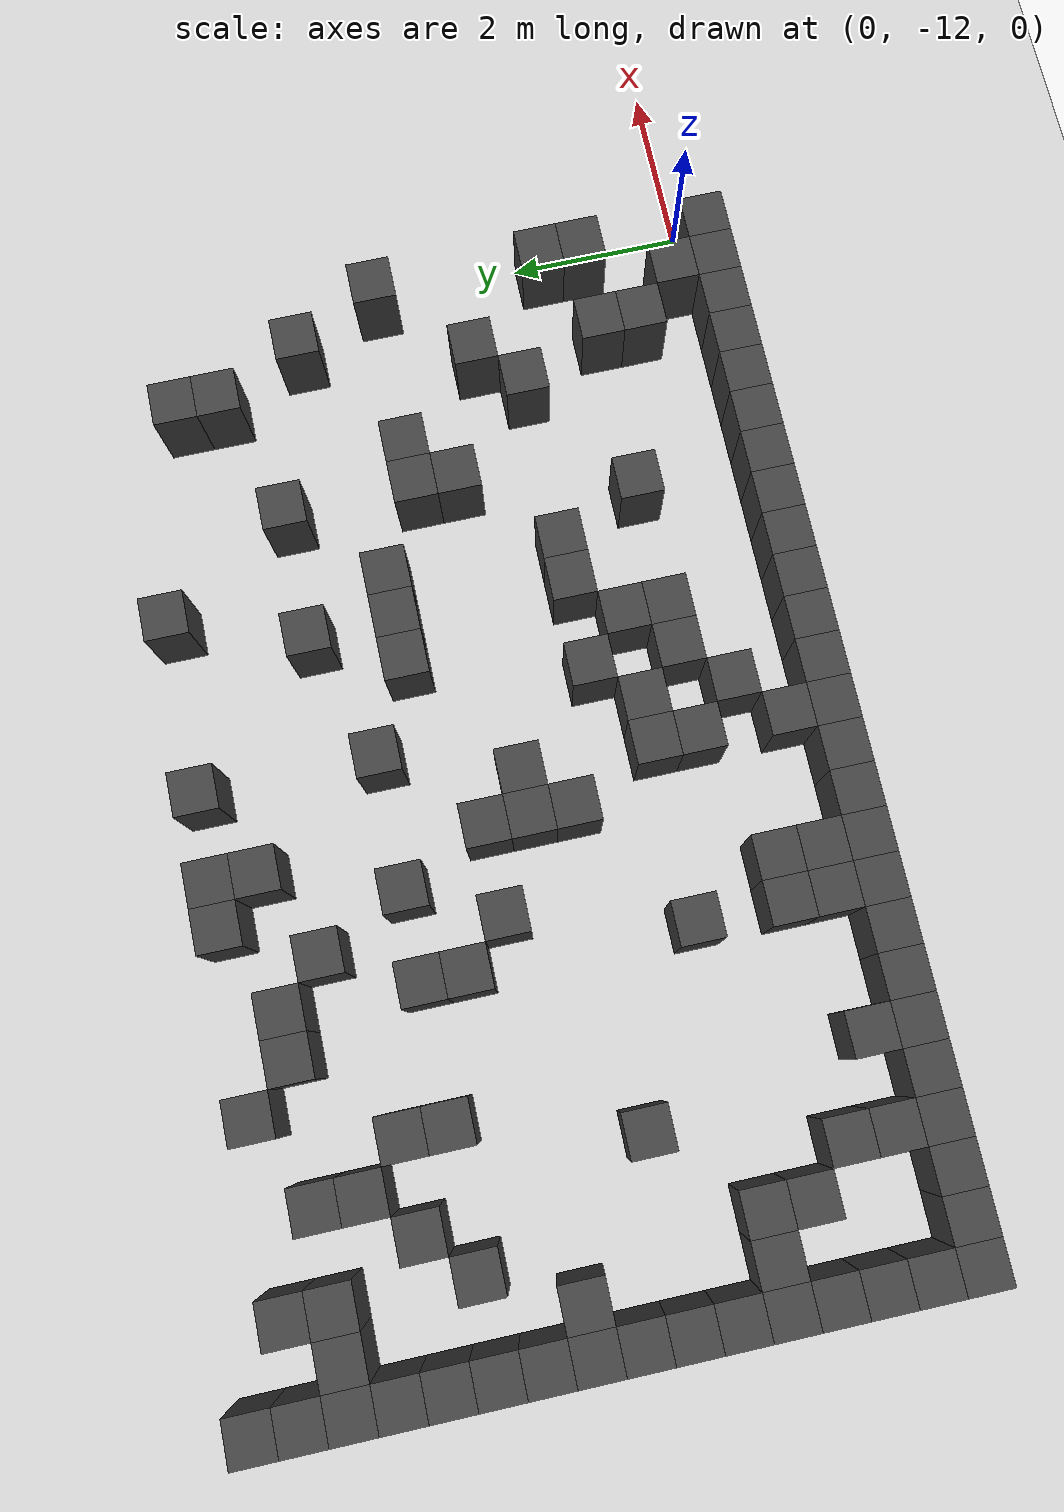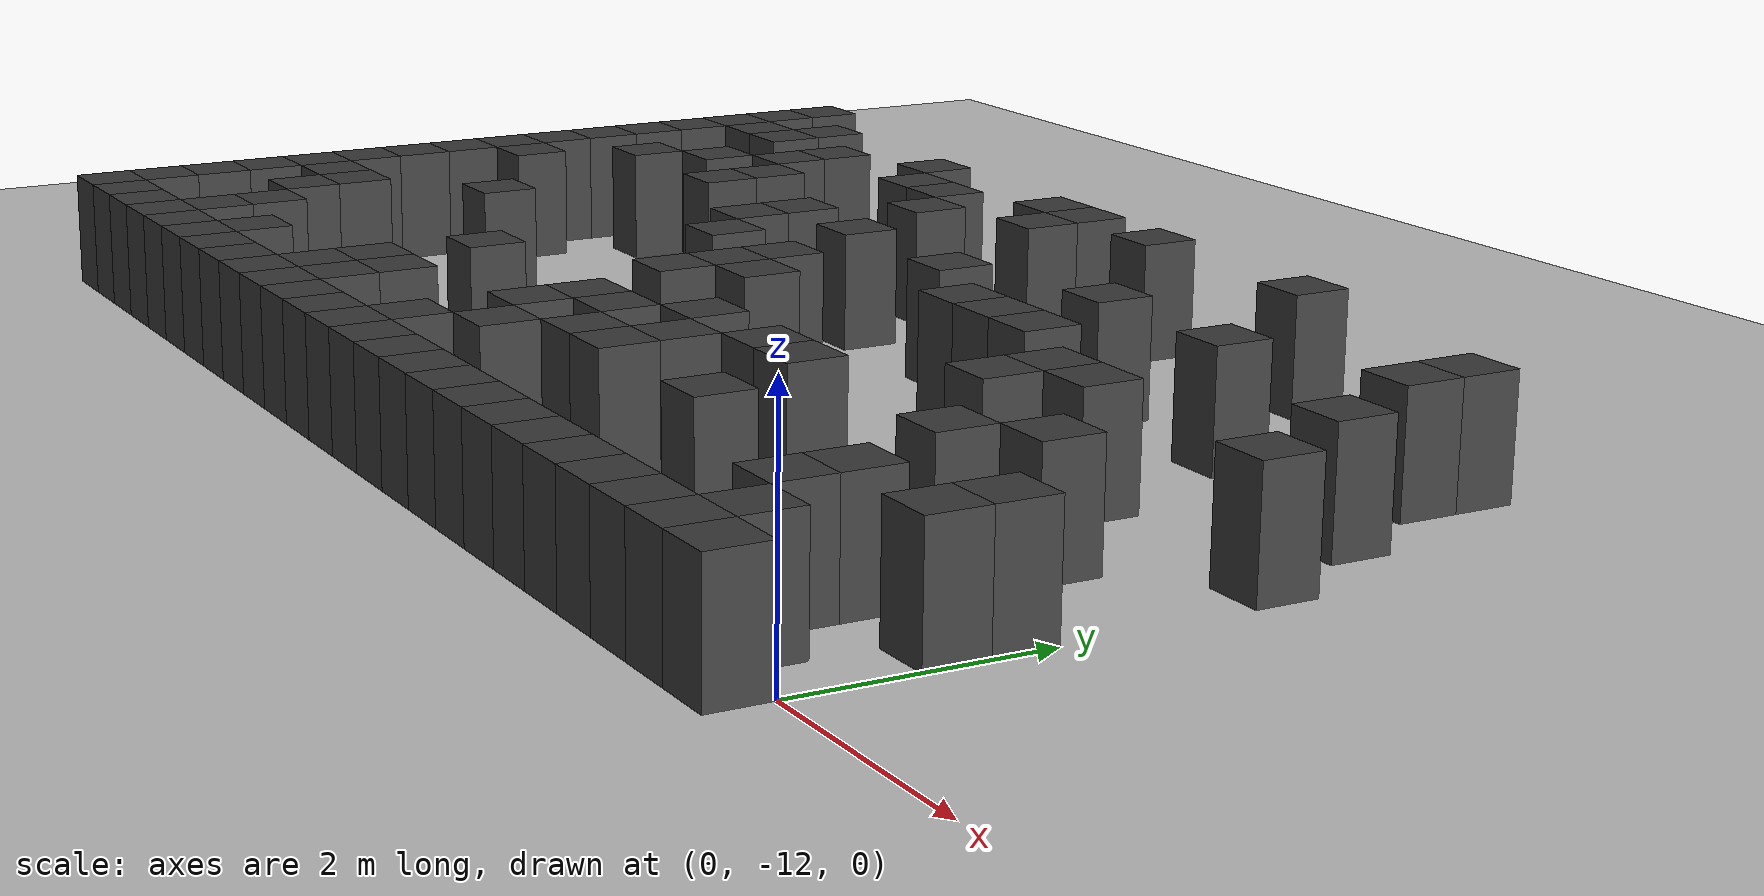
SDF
<sdf version="1.7">
 <world name="map_4226">
  <model name="ground_plane">
   <static>true</static>
   <link name="link">
    <collision name="collision">
     <geometry><plane><normal>0 0 1</normal><size>200 200</size></plane></geometry>
    </collision>
    <visual name="visual">
     <geometry><plane><normal>0 0 1</normal><size>200 200</size></plane></geometry>
     <material><ambient>0.8 0.8 0.8 1</ambient><diffuse>0.8 0.8 0.8 1</diffuse></material>
    </visual>
   </link>
  </model>
  <model name="maze_environment">
   <static>true</static>
   <link name="wall_438">
    <pose>-12.250 -4.750 0.500 0 0 0</pose>
    <collision name="col"><geometry><box><size>0.5 0.5 1.0</size></box></geometry></collision>
    <visual name="vis">
     <geometry><box><size>0.5 0.5 1.0</size></box></geometry>
     <material><ambient>0.15 0.15 0.15 1</ambient><diffuse>0.25 0.25 0.25 1</diffuse></material>
    </visual>
   </link>
   <link name="wall_446">
    <pose>-12.250 -5.250 0.500 0 0 0</pose>
    <collision name="col"><geometry><box><size>0.5 0.5 1.0</size></box></geometry></collision>
    <visual name="vis">
     <geometry><box><size>0.5 0.5 1.0</size></box></geometry>
     <material><ambient>0.15 0.15 0.15 1</ambient><diffuse>0.25 0.25 0.25 1</diffuse></material>
    </visual>
   </link>
   <link name="wall_447">
    <pose>-11.250 -5.250 0.500 0 0 0</pose>
    <collision name="col"><geometry><box><size>0.5 0.5 1.0</size></box></geometry></collision>
    <visual name="vis">
     <geometry><box><size>0.5 0.5 1.0</size></box></geometry>
     <material><ambient>0.15 0.15 0.15 1</ambient><diffuse>0.25 0.25 0.25 1</diffuse></material>
    </visual>
   </link>
   <link name="wall_448">
    <pose>-9.250 -5.250 0.500 0 0 0</pose>
    <collision name="col"><geometry><box><size>0.5 0.5 1.0</size></box></geometry></collision>
    <visual name="vis">
     <geometry><box><size>0.5 0.5 1.0</size></box></geometry>
     <material><ambient>0.15 0.15 0.15 1</ambient><diffuse>0.25 0.25 0.25 1</diffuse></material>
    </visual>
   </link>
   <link name="wall_449">
    <pose>-7.250 -5.250 0.500 0 0 0</pose>
    <collision name="col"><geometry><box><size>0.5 0.5 1.0</size></box></geometry></collision>
    <visual name="vis">
     <geometry><box><size>0.5 0.5 1.0</size></box></geometry>
     <material><ambient>0.15 0.15 0.15 1</ambient><diffuse>0.25 0.25 0.25 1</diffuse></material>
    </visual>
   </link>
   <link name="wall_450">
    <pose>-6.750 -5.250 0.500 0 0 0</pose>
    <collision name="col"><geometry><box><size>0.5 0.5 1.0</size></box></geometry></collision>
    <visual name="vis">
     <geometry><box><size>0.5 0.5 1.0</size></box></geometry>
     <material><ambient>0.15 0.15 0.15 1</ambient><diffuse>0.25 0.25 0.25 1</diffuse></material>
    </visual>
   </link>
   <link name="wall_451">
    <pose>-5.750 -5.250 0.500 0 0 0</pose>
    <collision name="col"><geometry><box><size>0.5 0.5 1.0</size></box></geometry></collision>
    <visual name="vis">
     <geometry><box><size>0.5 0.5 1.0</size></box></geometry>
     <material><ambient>0.15 0.15 0.15 1</ambient><diffuse>0.25 0.25 0.25 1</diffuse></material>
    </visual>
   </link>
   <link name="wall_452">
    <pose>-3.750 -5.250 0.500 0 0 0</pose>
    <collision name="col"><geometry><box><size>0.5 0.5 1.0</size></box></geometry></collision>
    <visual name="vis">
     <geometry><box><size>0.5 0.5 1.0</size></box></geometry>
     <material><ambient>0.15 0.15 0.15 1</ambient><diffuse>0.25 0.25 0.25 1</diffuse></material>
    </visual>
   </link>
   <link name="wall_458">
    <pose>-12.250 -5.750 0.500 0 0 0</pose>
    <collision name="col"><geometry><box><size>0.5 0.5 1.0</size></box></geometry></collision>
    <visual name="vis">
     <geometry><box><size>0.5 0.5 1.0</size></box></geometry>
     <material><ambient>0.15 0.15 0.15 1</ambient><diffuse>0.25 0.25 0.25 1</diffuse></material>
    </visual>
   </link>
   <link name="wall_459">
    <pose>-11.750 -5.750 0.500 0 0 0</pose>
    <collision name="col"><geometry><box><size>0.5 0.5 1.0</size></box></geometry></collision>
    <visual name="vis">
     <geometry><box><size>0.5 0.5 1.0</size></box></geometry>
     <material><ambient>0.15 0.15 0.15 1</ambient><diffuse>0.25 0.25 0.25 1</diffuse></material>
    </visual>
   </link>
   <link name="wall_460">
    <pose>-11.250 -5.750 0.500 0 0 0</pose>
    <collision name="col"><geometry><box><size>0.5 0.5 1.0</size></box></geometry></collision>
    <visual name="vis">
     <geometry><box><size>0.5 0.5 1.0</size></box></geometry>
     <material><ambient>0.15 0.15 0.15 1</ambient><diffuse>0.25 0.25 0.25 1</diffuse></material>
    </visual>
   </link>
   <link name="wall_461">
    <pose>-10.250 -5.750 0.500 0 0 0</pose>
    <collision name="col"><geometry><box><size>0.5 0.5 1.0</size></box></geometry></collision>
    <visual name="vis">
     <geometry><box><size>0.5 0.5 1.0</size></box></geometry>
     <material><ambient>0.15 0.15 0.15 1</ambient><diffuse>0.25 0.25 0.25 1</diffuse></material>
    </visual>
   </link>
   <link name="wall_462">
    <pose>-8.750 -5.750 0.500 0 0 0</pose>
    <collision name="col"><geometry><box><size>0.5 0.5 1.0</size></box></geometry></collision>
    <visual name="vis">
     <geometry><box><size>0.5 0.5 1.0</size></box></geometry>
     <material><ambient>0.15 0.15 0.15 1</ambient><diffuse>0.25 0.25 0.25 1</diffuse></material>
    </visual>
   </link>
   <link name="wall_463">
    <pose>-8.250 -5.750 0.500 0 0 0</pose>
    <collision name="col"><geometry><box><size>0.5 0.5 1.0</size></box></geometry></collision>
    <visual name="vis">
     <geometry><box><size>0.5 0.5 1.0</size></box></geometry>
     <material><ambient>0.15 0.15 0.15 1</ambient><diffuse>0.25 0.25 0.25 1</diffuse></material>
    </visual>
   </link>
   <link name="wall_464">
    <pose>-6.750 -5.750 0.500 0 0 0</pose>
    <collision name="col"><geometry><box><size>0.5 0.5 1.0</size></box></geometry></collision>
    <visual name="vis">
     <geometry><box><size>0.5 0.5 1.0</size></box></geometry>
     <material><ambient>0.15 0.15 0.15 1</ambient><diffuse>0.25 0.25 0.25 1</diffuse></material>
    </visual>
   </link>
   <link name="wall_465">
    <pose>-1.250 -5.750 0.500 0 0 0</pose>
    <collision name="col"><geometry><box><size>0.5 0.5 1.0</size></box></geometry></collision>
    <visual name="vis">
     <geometry><box><size>0.5 0.5 1.0</size></box></geometry>
     <material><ambient>0.15 0.15 0.15 1</ambient><diffuse>0.25 0.25 0.25 1</diffuse></material>
    </visual>
   </link>
   <link name="wall_474">
    <pose>-12.250 -6.250 0.500 0 0 0</pose>
    <collision name="col"><geometry><box><size>0.5 0.5 1.0</size></box></geometry></collision>
    <visual name="vis">
     <geometry><box><size>0.5 0.5 1.0</size></box></geometry>
     <material><ambient>0.15 0.15 0.15 1</ambient><diffuse>0.25 0.25 0.25 1</diffuse></material>
    </visual>
   </link>
   <link name="wall_475">
    <pose>-10.250 -6.250 0.500 0 0 0</pose>
    <collision name="col"><geometry><box><size>0.5 0.5 1.0</size></box></geometry></collision>
    <visual name="vis">
     <geometry><box><size>0.5 0.5 1.0</size></box></geometry>
     <material><ambient>0.15 0.15 0.15 1</ambient><diffuse>0.25 0.25 0.25 1</diffuse></material>
    </visual>
   </link>
   <link name="wall_476">
    <pose>-7.750 -6.250 0.500 0 0 0</pose>
    <collision name="col"><geometry><box><size>0.5 0.5 1.0</size></box></geometry></collision>
    <visual name="vis">
     <geometry><box><size>0.5 0.5 1.0</size></box></geometry>
     <material><ambient>0.15 0.15 0.15 1</ambient><diffuse>0.25 0.25 0.25 1</diffuse></material>
    </visual>
   </link>
   <link name="wall_477">
    <pose>-1.250 -6.250 0.500 0 0 0</pose>
    <collision name="col"><geometry><box><size>0.5 0.5 1.0</size></box></geometry></collision>
    <visual name="vis">
     <geometry><box><size>0.5 0.5 1.0</size></box></geometry>
     <material><ambient>0.15 0.15 0.15 1</ambient><diffuse>0.25 0.25 0.25 1</diffuse></material>
    </visual>
   </link>
   <link name="wall_486">
    <pose>-12.250 -6.750 0.500 0 0 0</pose>
    <collision name="col"><geometry><box><size>0.5 0.5 1.0</size></box></geometry></collision>
    <visual name="vis">
     <geometry><box><size>0.5 0.5 1.0</size></box></geometry>
     <material><ambient>0.15 0.15 0.15 1</ambient><diffuse>0.25 0.25 0.25 1</diffuse></material>
    </visual>
   </link>
   <link name="wall_487">
    <pose>-10.750 -6.750 0.500 0 0 0</pose>
    <collision name="col"><geometry><box><size>0.5 0.5 1.0</size></box></geometry></collision>
    <visual name="vis">
     <geometry><box><size>0.5 0.5 1.0</size></box></geometry>
     <material><ambient>0.15 0.15 0.15 1</ambient><diffuse>0.25 0.25 0.25 1</diffuse></material>
    </visual>
   </link>
   <link name="wall_488">
    <pose>-9.750 -6.750 0.500 0 0 0</pose>
    <collision name="col"><geometry><box><size>0.5 0.5 1.0</size></box></geometry></collision>
    <visual name="vis">
     <geometry><box><size>0.5 0.5 1.0</size></box></geometry>
     <material><ambient>0.15 0.15 0.15 1</ambient><diffuse>0.25 0.25 0.25 1</diffuse></material>
    </visual>
   </link>
   <link name="wall_489">
    <pose>-4.250 -6.750 0.500 0 0 0</pose>
    <collision name="col"><geometry><box><size>0.5 0.5 1.0</size></box></geometry></collision>
    <visual name="vis">
     <geometry><box><size>0.5 0.5 1.0</size></box></geometry>
     <material><ambient>0.15 0.15 0.15 1</ambient><diffuse>0.25 0.25 0.25 1</diffuse></material>
    </visual>
   </link>
   <link name="wall_490">
    <pose>-2.750 -6.750 0.500 0 0 0</pose>
    <collision name="col"><geometry><box><size>0.5 0.5 1.0</size></box></geometry></collision>
    <visual name="vis">
     <geometry><box><size>0.5 0.5 1.0</size></box></geometry>
     <material><ambient>0.15 0.15 0.15 1</ambient><diffuse>0.25 0.25 0.25 1</diffuse></material>
    </visual>
   </link>
   <link name="wall_500">
    <pose>-12.250 -7.250 0.500 0 0 0</pose>
    <collision name="col"><geometry><box><size>0.5 0.5 1.0</size></box></geometry></collision>
    <visual name="vis">
     <geometry><box><size>0.5 0.5 1.0</size></box></geometry>
     <material><ambient>0.15 0.15 0.15 1</ambient><diffuse>0.25 0.25 0.25 1</diffuse></material>
    </visual>
   </link>
   <link name="wall_501">
    <pose>-11.250 -7.250 0.500 0 0 0</pose>
    <collision name="col"><geometry><box><size>0.5 0.5 1.0</size></box></geometry></collision>
    <visual name="vis">
     <geometry><box><size>0.5 0.5 1.0</size></box></geometry>
     <material><ambient>0.15 0.15 0.15 1</ambient><diffuse>0.25 0.25 0.25 1</diffuse></material>
    </visual>
   </link>
   <link name="wall_502">
    <pose>-9.750 -7.250 0.500 0 0 0</pose>
    <collision name="col"><geometry><box><size>0.5 0.5 1.0</size></box></geometry></collision>
    <visual name="vis">
     <geometry><box><size>0.5 0.5 1.0</size></box></geometry>
     <material><ambient>0.15 0.15 0.15 1</ambient><diffuse>0.25 0.25 0.25 1</diffuse></material>
    </visual>
   </link>
   <link name="wall_503">
    <pose>-8.250 -7.250 0.500 0 0 0</pose>
    <collision name="col"><geometry><box><size>0.5 0.5 1.0</size></box></geometry></collision>
    <visual name="vis">
     <geometry><box><size>0.5 0.5 1.0</size></box></geometry>
     <material><ambient>0.15 0.15 0.15 1</ambient><diffuse>0.25 0.25 0.25 1</diffuse></material>
    </visual>
   </link>
   <link name="wall_504">
    <pose>-7.250 -7.250 0.500 0 0 0</pose>
    <collision name="col"><geometry><box><size>0.5 0.5 1.0</size></box></geometry></collision>
    <visual name="vis">
     <geometry><box><size>0.5 0.5 1.0</size></box></geometry>
     <material><ambient>0.15 0.15 0.15 1</ambient><diffuse>0.25 0.25 0.25 1</diffuse></material>
    </visual>
   </link>
   <link name="wall_505">
    <pose>-5.750 -7.250 0.500 0 0 0</pose>
    <collision name="col"><geometry><box><size>0.5 0.5 1.0</size></box></geometry></collision>
    <visual name="vis">
     <geometry><box><size>0.5 0.5 1.0</size></box></geometry>
     <material><ambient>0.15 0.15 0.15 1</ambient><diffuse>0.25 0.25 0.25 1</diffuse></material>
    </visual>
   </link>
   <link name="wall_506">
    <pose>-0.750 -7.250 0.500 0 0 0</pose>
    <collision name="col"><geometry><box><size>0.5 0.5 1.0</size></box></geometry></collision>
    <visual name="vis">
     <geometry><box><size>0.5 0.5 1.0</size></box></geometry>
     <material><ambient>0.15 0.15 0.15 1</ambient><diffuse>0.25 0.25 0.25 1</diffuse></material>
    </visual>
   </link>
   <link name="wall_514">
    <pose>-12.250 -7.750 0.500 0 0 0</pose>
    <collision name="col"><geometry><box><size>0.5 0.5 1.0</size></box></geometry></collision>
    <visual name="vis">
     <geometry><box><size>0.5 0.5 1.0</size></box></geometry>
     <material><ambient>0.15 0.15 0.15 1</ambient><diffuse>0.25 0.25 0.25 1</diffuse></material>
    </visual>
   </link>
   <link name="wall_515">
    <pose>-8.250 -7.750 0.500 0 0 0</pose>
    <collision name="col"><geometry><box><size>0.5 0.5 1.0</size></box></geometry></collision>
    <visual name="vis">
     <geometry><box><size>0.5 0.5 1.0</size></box></geometry>
     <material><ambient>0.15 0.15 0.15 1</ambient><diffuse>0.25 0.25 0.25 1</diffuse></material>
    </visual>
   </link>
   <link name="wall_516">
    <pose>-4.750 -7.750 0.500 0 0 0</pose>
    <collision name="col"><geometry><box><size>0.5 0.5 1.0</size></box></geometry></collision>
    <visual name="vis">
     <geometry><box><size>0.5 0.5 1.0</size></box></geometry>
     <material><ambient>0.15 0.15 0.15 1</ambient><diffuse>0.25 0.25 0.25 1</diffuse></material>
    </visual>
   </link>
   <link name="wall_517">
    <pose>-4.250 -7.750 0.500 0 0 0</pose>
    <collision name="col"><geometry><box><size>0.5 0.5 1.0</size></box></geometry></collision>
    <visual name="vis">
     <geometry><box><size>0.5 0.5 1.0</size></box></geometry>
     <material><ambient>0.15 0.15 0.15 1</ambient><diffuse>0.25 0.25 0.25 1</diffuse></material>
    </visual>
   </link>
   <link name="wall_518">
    <pose>-3.750 -7.750 0.500 0 0 0</pose>
    <collision name="col"><geometry><box><size>0.5 0.5 1.0</size></box></geometry></collision>
    <visual name="vis">
     <geometry><box><size>0.5 0.5 1.0</size></box></geometry>
     <material><ambient>0.15 0.15 0.15 1</ambient><diffuse>0.25 0.25 0.25 1</diffuse></material>
    </visual>
   </link>
   <link name="wall_525">
    <pose>-12.250 -8.250 0.500 0 0 0</pose>
    <collision name="col"><geometry><box><size>0.5 0.5 1.0</size></box></geometry></collision>
    <visual name="vis">
     <geometry><box><size>0.5 0.5 1.0</size></box></geometry>
     <material><ambient>0.15 0.15 0.15 1</ambient><diffuse>0.25 0.25 0.25 1</diffuse></material>
    </visual>
   </link>
   <link name="wall_526">
    <pose>-11.750 -8.250 0.500 0 0 0</pose>
    <collision name="col"><geometry><box><size>0.5 0.5 1.0</size></box></geometry></collision>
    <visual name="vis">
     <geometry><box><size>0.5 0.5 1.0</size></box></geometry>
     <material><ambient>0.15 0.15 0.15 1</ambient><diffuse>0.25 0.25 0.25 1</diffuse></material>
    </visual>
   </link>
   <link name="wall_527">
    <pose>-7.750 -8.250 0.500 0 0 0</pose>
    <collision name="col"><geometry><box><size>0.5 0.5 1.0</size></box></geometry></collision>
    <visual name="vis">
     <geometry><box><size>0.5 0.5 1.0</size></box></geometry>
     <material><ambient>0.15 0.15 0.15 1</ambient><diffuse>0.25 0.25 0.25 1</diffuse></material>
    </visual>
   </link>
   <link name="wall_528">
    <pose>-6.750 -8.250 0.500 0 0 0</pose>
    <collision name="col"><geometry><box><size>0.5 0.5 1.0</size></box></geometry></collision>
    <visual name="vis">
     <geometry><box><size>0.5 0.5 1.0</size></box></geometry>
     <material><ambient>0.15 0.15 0.15 1</ambient><diffuse>0.25 0.25 0.25 1</diffuse></material>
    </visual>
   </link>
   <link name="wall_529">
    <pose>-2.750 -8.250 0.500 0 0 0</pose>
    <collision name="col"><geometry><box><size>0.5 0.5 1.0</size></box></geometry></collision>
    <visual name="vis">
     <geometry><box><size>0.5 0.5 1.0</size></box></geometry>
     <material><ambient>0.15 0.15 0.15 1</ambient><diffuse>0.25 0.25 0.25 1</diffuse></material>
    </visual>
   </link>
   <link name="wall_530">
    <pose>-2.250 -8.250 0.500 0 0 0</pose>
    <collision name="col"><geometry><box><size>0.5 0.5 1.0</size></box></geometry></collision>
    <visual name="vis">
     <geometry><box><size>0.5 0.5 1.0</size></box></geometry>
     <material><ambient>0.15 0.15 0.15 1</ambient><diffuse>0.25 0.25 0.25 1</diffuse></material>
    </visual>
   </link>
   <link name="wall_531">
    <pose>-0.250 -8.250 0.500 0 0 0</pose>
    <collision name="col"><geometry><box><size>0.5 0.5 1.0</size></box></geometry></collision>
    <visual name="vis">
     <geometry><box><size>0.5 0.5 1.0</size></box></geometry>
     <material><ambient>0.15 0.15 0.15 1</ambient><diffuse>0.25 0.25 0.25 1</diffuse></material>
    </visual>
   </link>
   <link name="wall_538">
    <pose>-12.250 -8.750 0.500 0 0 0</pose>
    <collision name="col"><geometry><box><size>0.5 0.5 1.0</size></box></geometry></collision>
    <visual name="vis">
     <geometry><box><size>0.5 0.5 1.0</size></box></geometry>
     <material><ambient>0.15 0.15 0.15 1</ambient><diffuse>0.25 0.25 0.25 1</diffuse></material>
    </visual>
   </link>
   <link name="wall_539">
    <pose>-6.750 -8.750 0.500 0 0 0</pose>
    <collision name="col"><geometry><box><size>0.5 0.5 1.0</size></box></geometry></collision>
    <visual name="vis">
     <geometry><box><size>0.5 0.5 1.0</size></box></geometry>
     <material><ambient>0.15 0.15 0.15 1</ambient><diffuse>0.25 0.25 0.25 1</diffuse></material>
    </visual>
   </link>
   <link name="wall_540">
    <pose>-6.250 -8.750 0.500 0 0 0</pose>
    <collision name="col"><geometry><box><size>0.5 0.5 1.0</size></box></geometry></collision>
    <visual name="vis">
     <geometry><box><size>0.5 0.5 1.0</size></box></geometry>
     <material><ambient>0.15 0.15 0.15 1</ambient><diffuse>0.25 0.25 0.25 1</diffuse></material>
    </visual>
   </link>
   <link name="wall_541">
    <pose>-2.750 -8.750 0.500 0 0 0</pose>
    <collision name="col"><geometry><box><size>0.5 0.5 1.0</size></box></geometry></collision>
    <visual name="vis">
     <geometry><box><size>0.5 0.5 1.0</size></box></geometry>
     <material><ambient>0.15 0.15 0.15 1</ambient><diffuse>0.25 0.25 0.25 1</diffuse></material>
    </visual>
   </link>
   <link name="wall_548">
    <pose>-12.250 -9.250 0.500 0 0 0</pose>
    <collision name="col"><geometry><box><size>0.5 0.5 1.0</size></box></geometry></collision>
    <visual name="vis">
     <geometry><box><size>0.5 0.5 1.0</size></box></geometry>
     <material><ambient>0.15 0.15 0.15 1</ambient><diffuse>0.25 0.25 0.25 1</diffuse></material>
    </visual>
   </link>
   <link name="wall_549">
    <pose>-10.250 -9.250 0.500 0 0 0</pose>
    <collision name="col"><geometry><box><size>0.5 0.5 1.0</size></box></geometry></collision>
    <visual name="vis">
     <geometry><box><size>0.5 0.5 1.0</size></box></geometry>
     <material><ambient>0.15 0.15 0.15 1</ambient><diffuse>0.25 0.25 0.25 1</diffuse></material>
    </visual>
   </link>
   <link name="wall_550">
    <pose>-6.750 -9.250 0.500 0 0 0</pose>
    <collision name="col"><geometry><box><size>0.5 0.5 1.0</size></box></geometry></collision>
    <visual name="vis">
     <geometry><box><size>0.5 0.5 1.0</size></box></geometry>
     <material><ambient>0.15 0.15 0.15 1</ambient><diffuse>0.25 0.25 0.25 1</diffuse></material>
    </visual>
   </link>
   <link name="wall_551">
    <pose>-1.250 -9.250 0.500 0 0 0</pose>
    <collision name="col"><geometry><box><size>0.5 0.5 1.0</size></box></geometry></collision>
    <visual name="vis">
     <geometry><box><size>0.5 0.5 1.0</size></box></geometry>
     <material><ambient>0.15 0.15 0.15 1</ambient><diffuse>0.25 0.25 0.25 1</diffuse></material>
    </visual>
   </link>
   <link name="wall_557">
    <pose>-12.250 -9.750 0.500 0 0 0</pose>
    <collision name="col"><geometry><box><size>0.5 0.5 1.0</size></box></geometry></collision>
    <visual name="vis">
     <geometry><box><size>0.5 0.5 1.0</size></box></geometry>
     <material><ambient>0.15 0.15 0.15 1</ambient><diffuse>0.25 0.25 0.25 1</diffuse></material>
    </visual>
   </link>
   <link name="wall_558">
    <pose>-5.250 -9.750 0.500 0 0 0</pose>
    <collision name="col"><geometry><box><size>0.5 0.5 1.0</size></box></geometry></collision>
    <visual name="vis">
     <geometry><box><size>0.5 0.5 1.0</size></box></geometry>
     <material><ambient>0.15 0.15 0.15 1</ambient><diffuse>0.25 0.25 0.25 1</diffuse></material>
    </visual>
   </link>
   <link name="wall_559">
    <pose>-4.250 -9.750 0.500 0 0 0</pose>
    <collision name="col"><geometry><box><size>0.5 0.5 1.0</size></box></geometry></collision>
    <visual name="vis">
     <geometry><box><size>0.5 0.5 1.0</size></box></geometry>
     <material><ambient>0.15 0.15 0.15 1</ambient><diffuse>0.25 0.25 0.25 1</diffuse></material>
    </visual>
   </link>
   <link name="wall_560">
    <pose>-3.750 -9.750 0.500 0 0 0</pose>
    <collision name="col"><geometry><box><size>0.5 0.5 1.0</size></box></geometry></collision>
    <visual name="vis">
     <geometry><box><size>0.5 0.5 1.0</size></box></geometry>
     <material><ambient>0.15 0.15 0.15 1</ambient><diffuse>0.25 0.25 0.25 1</diffuse></material>
    </visual>
   </link>
   <link name="wall_561">
    <pose>-1.750 -9.750 0.500 0 0 0</pose>
    <collision name="col"><geometry><box><size>0.5 0.5 1.0</size></box></geometry></collision>
    <visual name="vis">
     <geometry><box><size>0.5 0.5 1.0</size></box></geometry>
     <material><ambient>0.15 0.15 0.15 1</ambient><diffuse>0.25 0.25 0.25 1</diffuse></material>
    </visual>
   </link>
   <link name="wall_567">
    <pose>-12.250 -10.250 0.500 0 0 0</pose>
    <collision name="col"><geometry><box><size>0.5 0.5 1.0</size></box></geometry></collision>
    <visual name="vis">
     <geometry><box><size>0.5 0.5 1.0</size></box></geometry>
     <material><ambient>0.15 0.15 0.15 1</ambient><diffuse>0.25 0.25 0.25 1</diffuse></material>
    </visual>
   </link>
   <link name="wall_568">
    <pose>-11.750 -10.250 0.500 0 0 0</pose>
    <collision name="col"><geometry><box><size>0.5 0.5 1.0</size></box></geometry></collision>
    <visual name="vis">
     <geometry><box><size>0.5 0.5 1.0</size></box></geometry>
     <material><ambient>0.15 0.15 0.15 1</ambient><diffuse>0.25 0.25 0.25 1</diffuse></material>
    </visual>
   </link>
   <link name="wall_569">
    <pose>-11.250 -10.250 0.500 0 0 0</pose>
    <collision name="col"><geometry><box><size>0.5 0.5 1.0</size></box></geometry></collision>
    <visual name="vis">
     <geometry><box><size>0.5 0.5 1.0</size></box></geometry>
     <material><ambient>0.15 0.15 0.15 1</ambient><diffuse>0.25 0.25 0.25 1</diffuse></material>
    </visual>
   </link>
   <link name="wall_570">
    <pose>-8.250 -10.250 0.500 0 0 0</pose>
    <collision name="col"><geometry><box><size>0.5 0.5 1.0</size></box></geometry></collision>
    <visual name="vis">
     <geometry><box><size>0.5 0.5 1.0</size></box></geometry>
     <material><ambient>0.15 0.15 0.15 1</ambient><diffuse>0.25 0.25 0.25 1</diffuse></material>
    </visual>
   </link>
   <link name="wall_571">
    <pose>-6.250 -10.250 0.500 0 0 0</pose>
    <collision name="col"><geometry><box><size>0.5 0.5 1.0</size></box></geometry></collision>
    <visual name="vis">
     <geometry><box><size>0.5 0.5 1.0</size></box></geometry>
     <material><ambient>0.15 0.15 0.15 1</ambient><diffuse>0.25 0.25 0.25 1</diffuse></material>
    </visual>
   </link>
   <link name="wall_572">
    <pose>-5.750 -10.250 0.500 0 0 0</pose>
    <collision name="col"><geometry><box><size>0.5 0.5 1.0</size></box></geometry></collision>
    <visual name="vis">
     <geometry><box><size>0.5 0.5 1.0</size></box></geometry>
     <material><ambient>0.15 0.15 0.15 1</ambient><diffuse>0.25 0.25 0.25 1</diffuse></material>
    </visual>
   </link>
   <link name="wall_573">
    <pose>-4.750 -10.250 0.500 0 0 0</pose>
    <collision name="col"><geometry><box><size>0.5 0.5 1.0</size></box></geometry></collision>
    <visual name="vis">
     <geometry><box><size>0.5 0.5 1.0</size></box></geometry>
     <material><ambient>0.15 0.15 0.15 1</ambient><diffuse>0.25 0.25 0.25 1</diffuse></material>
    </visual>
   </link>
   <link name="wall_574">
    <pose>-0.250 -10.250 0.500 0 0 0</pose>
    <collision name="col"><geometry><box><size>0.5 0.5 1.0</size></box></geometry></collision>
    <visual name="vis">
     <geometry><box><size>0.5 0.5 1.0</size></box></geometry>
     <material><ambient>0.15 0.15 0.15 1</ambient><diffuse>0.25 0.25 0.25 1</diffuse></material>
    </visual>
   </link>
   <link name="wall_580">
    <pose>-12.250 -10.750 0.500 0 0 0</pose>
    <collision name="col"><geometry><box><size>0.5 0.5 1.0</size></box></geometry></collision>
    <visual name="vis">
     <geometry><box><size>0.5 0.5 1.0</size></box></geometry>
     <material><ambient>0.15 0.15 0.15 1</ambient><diffuse>0.25 0.25 0.25 1</diffuse></material>
    </visual>
   </link>
   <link name="wall_581">
    <pose>-11.250 -10.750 0.500 0 0 0</pose>
    <collision name="col"><geometry><box><size>0.5 0.5 1.0</size></box></geometry></collision>
    <visual name="vis">
     <geometry><box><size>0.5 0.5 1.0</size></box></geometry>
     <material><ambient>0.15 0.15 0.15 1</ambient><diffuse>0.25 0.25 0.25 1</diffuse></material>
    </visual>
   </link>
   <link name="wall_582">
    <pose>-6.250 -10.750 0.500 0 0 0</pose>
    <collision name="col"><geometry><box><size>0.5 0.5 1.0</size></box></geometry></collision>
    <visual name="vis">
     <geometry><box><size>0.5 0.5 1.0</size></box></geometry>
     <material><ambient>0.15 0.15 0.15 1</ambient><diffuse>0.25 0.25 0.25 1</diffuse></material>
    </visual>
   </link>
   <link name="wall_583">
    <pose>-5.250 -10.750 0.500 0 0 0</pose>
    <collision name="col"><geometry><box><size>0.5 0.5 1.0</size></box></geometry></collision>
    <visual name="vis">
     <geometry><box><size>0.5 0.5 1.0</size></box></geometry>
     <material><ambient>0.15 0.15 0.15 1</ambient><diffuse>0.25 0.25 0.25 1</diffuse></material>
    </visual>
   </link>
   <link name="wall_584">
    <pose>-4.750 -10.750 0.500 0 0 0</pose>
    <collision name="col"><geometry><box><size>0.5 0.5 1.0</size></box></geometry></collision>
    <visual name="vis">
     <geometry><box><size>0.5 0.5 1.0</size></box></geometry>
     <material><ambient>0.15 0.15 0.15 1</ambient><diffuse>0.25 0.25 0.25 1</diffuse></material>
    </visual>
   </link>
   <link name="wall_585">
    <pose>-3.250 -10.750 0.500 0 0 0</pose>
    <collision name="col"><geometry><box><size>0.5 0.5 1.0</size></box></geometry></collision>
    <visual name="vis">
     <geometry><box><size>0.5 0.5 1.0</size></box></geometry>
     <material><ambient>0.15 0.15 0.15 1</ambient><diffuse>0.25 0.25 0.25 1</diffuse></material>
    </visual>
   </link>
   <link name="wall_586">
    <pose>-1.250 -10.750 0.500 0 0 0</pose>
    <collision name="col"><geometry><box><size>0.5 0.5 1.0</size></box></geometry></collision>
    <visual name="vis">
     <geometry><box><size>0.5 0.5 1.0</size></box></geometry>
     <material><ambient>0.15 0.15 0.15 1</ambient><diffuse>0.25 0.25 0.25 1</diffuse></material>
    </visual>
   </link>
   <link name="wall_587">
    <pose>-0.250 -10.750 0.500 0 0 0</pose>
    <collision name="col"><geometry><box><size>0.5 0.5 1.0</size></box></geometry></collision>
    <visual name="vis">
     <geometry><box><size>0.5 0.5 1.0</size></box></geometry>
     <material><ambient>0.15 0.15 0.15 1</ambient><diffuse>0.25 0.25 0.25 1</diffuse></material>
    </visual>
   </link>
   <link name="wall_592">
    <pose>-12.250 -11.250 0.500 0 0 0</pose>
    <collision name="col"><geometry><box><size>0.5 0.5 1.0</size></box></geometry></collision>
    <visual name="vis">
     <geometry><box><size>0.5 0.5 1.0</size></box></geometry>
     <material><ambient>0.15 0.15 0.15 1</ambient><diffuse>0.25 0.25 0.25 1</diffuse></material>
    </visual>
   </link>
   <link name="wall_593">
    <pose>-10.750 -11.250 0.500 0 0 0</pose>
    <collision name="col"><geometry><box><size>0.5 0.5 1.0</size></box></geometry></collision>
    <visual name="vis">
     <geometry><box><size>0.5 0.5 1.0</size></box></geometry>
     <material><ambient>0.15 0.15 0.15 1</ambient><diffuse>0.25 0.25 0.25 1</diffuse></material>
    </visual>
   </link>
   <link name="wall_594">
    <pose>-8.250 -11.250 0.500 0 0 0</pose>
    <collision name="col"><geometry><box><size>0.5 0.5 1.0</size></box></geometry></collision>
    <visual name="vis">
     <geometry><box><size>0.5 0.5 1.0</size></box></geometry>
     <material><ambient>0.15 0.15 0.15 1</ambient><diffuse>0.25 0.25 0.25 1</diffuse></material>
    </visual>
   </link>
   <link name="wall_595">
    <pose>-7.750 -11.250 0.500 0 0 0</pose>
    <collision name="col"><geometry><box><size>0.5 0.5 1.0</size></box></geometry></collision>
    <visual name="vis">
     <geometry><box><size>0.5 0.5 1.0</size></box></geometry>
     <material><ambient>0.15 0.15 0.15 1</ambient><diffuse>0.25 0.25 0.25 1</diffuse></material>
    </visual>
   </link>
   <link name="wall_596">
    <pose>-5.750 -11.250 0.500 0 0 0</pose>
    <collision name="col"><geometry><box><size>0.5 0.5 1.0</size></box></geometry></collision>
    <visual name="vis">
     <geometry><box><size>0.5 0.5 1.0</size></box></geometry>
     <material><ambient>0.15 0.15 0.15 1</ambient><diffuse>0.25 0.25 0.25 1</diffuse></material>
    </visual>
   </link>
   <link name="wall_597">
    <pose>-1.250 -11.250 0.500 0 0 0</pose>
    <collision name="col"><geometry><box><size>0.5 0.5 1.0</size></box></geometry></collision>
    <visual name="vis">
     <geometry><box><size>0.5 0.5 1.0</size></box></geometry>
     <material><ambient>0.15 0.15 0.15 1</ambient><diffuse>0.25 0.25 0.25 1</diffuse></material>
    </visual>
   </link>
   <link name="wall_605">
    <pose>-12.250 -11.750 0.500 0 0 0</pose>
    <collision name="col"><geometry><box><size>0.5 0.5 1.0</size></box></geometry></collision>
    <visual name="vis">
     <geometry><box><size>0.5 0.5 1.0</size></box></geometry>
     <material><ambient>0.15 0.15 0.15 1</ambient><diffuse>0.25 0.25 0.25 1</diffuse></material>
    </visual>
   </link>
   <link name="wall_606">
    <pose>-10.750 -11.750 0.500 0 0 0</pose>
    <collision name="col"><geometry><box><size>0.5 0.5 1.0</size></box></geometry></collision>
    <visual name="vis">
     <geometry><box><size>0.5 0.5 1.0</size></box></geometry>
     <material><ambient>0.15 0.15 0.15 1</ambient><diffuse>0.25 0.25 0.25 1</diffuse></material>
    </visual>
   </link>
   <link name="wall_607">
    <pose>-9.750 -11.750 0.500 0 0 0</pose>
    <collision name="col"><geometry><box><size>0.5 0.5 1.0</size></box></geometry></collision>
    <visual name="vis">
     <geometry><box><size>0.5 0.5 1.0</size></box></geometry>
     <material><ambient>0.15 0.15 0.15 1</ambient><diffuse>0.25 0.25 0.25 1</diffuse></material>
    </visual>
   </link>
   <link name="wall_608">
    <pose>-8.250 -11.750 0.500 0 0 0</pose>
    <collision name="col"><geometry><box><size>0.5 0.5 1.0</size></box></geometry></collision>
    <visual name="vis">
     <geometry><box><size>0.5 0.5 1.0</size></box></geometry>
     <material><ambient>0.15 0.15 0.15 1</ambient><diffuse>0.25 0.25 0.25 1</diffuse></material>
    </visual>
   </link>
   <link name="wall_609">
    <pose>-7.750 -11.750 0.500 0 0 0</pose>
    <collision name="col"><geometry><box><size>0.5 0.5 1.0</size></box></geometry></collision>
    <visual name="vis">
     <geometry><box><size>0.5 0.5 1.0</size></box></geometry>
     <material><ambient>0.15 0.15 0.15 1</ambient><diffuse>0.25 0.25 0.25 1</diffuse></material>
    </visual>
   </link>
   <link name="wall_610">
    <pose>-6.250 -11.750 0.500 0 0 0</pose>
    <collision name="col"><geometry><box><size>0.5 0.5 1.0</size></box></geometry></collision>
    <visual name="vis">
     <geometry><box><size>0.5 0.5 1.0</size></box></geometry>
     <material><ambient>0.15 0.15 0.15 1</ambient><diffuse>0.25 0.25 0.25 1</diffuse></material>
    </visual>
   </link>
   <link name="wall_611">
    <pose>-0.750 -11.750 0.500 0 0 0</pose>
    <collision name="col"><geometry><box><size>0.5 0.5 1.0</size></box></geometry></collision>
    <visual name="vis">
     <geometry><box><size>0.5 0.5 1.0</size></box></geometry>
     <material><ambient>0.15 0.15 0.15 1</ambient><diffuse>0.25 0.25 0.25 1</diffuse></material>
    </visual>
   </link>
   <link name="wall_616">
    <pose>-12.250 -12.250 0.500 0 0 0</pose>
    <collision name="col"><geometry><box><size>0.5 0.5 1.0</size></box></geometry></collision>
    <visual name="vis">
     <geometry><box><size>0.5 0.5 1.0</size></box></geometry>
     <material><ambient>0.15 0.15 0.15 1</ambient><diffuse>0.25 0.25 0.25 1</diffuse></material>
    </visual>
   </link>
   <link name="wall_617">
    <pose>-11.750 -12.250 0.500 0 0 0</pose>
    <collision name="col"><geometry><box><size>0.5 0.5 1.0</size></box></geometry></collision>
    <visual name="vis">
     <geometry><box><size>0.5 0.5 1.0</size></box></geometry>
     <material><ambient>0.15 0.15 0.15 1</ambient><diffuse>0.25 0.25 0.25 1</diffuse></material>
    </visual>
   </link>
   <link name="wall_618">
    <pose>-11.250 -12.250 0.500 0 0 0</pose>
    <collision name="col"><geometry><box><size>0.5 0.5 1.0</size></box></geometry></collision>
    <visual name="vis">
     <geometry><box><size>0.5 0.5 1.0</size></box></geometry>
     <material><ambient>0.15 0.15 0.15 1</ambient><diffuse>0.25 0.25 0.25 1</diffuse></material>
    </visual>
   </link>
   <link name="wall_619">
    <pose>-10.750 -12.250 0.500 0 0 0</pose>
    <collision name="col"><geometry><box><size>0.5 0.5 1.0</size></box></geometry></collision>
    <visual name="vis">
     <geometry><box><size>0.5 0.5 1.0</size></box></geometry>
     <material><ambient>0.15 0.15 0.15 1</ambient><diffuse>0.25 0.25 0.25 1</diffuse></material>
    </visual>
   </link>
   <link name="wall_620">
    <pose>-10.250 -12.250 0.500 0 0 0</pose>
    <collision name="col"><geometry><box><size>0.5 0.5 1.0</size></box></geometry></collision>
    <visual name="vis">
     <geometry><box><size>0.5 0.5 1.0</size></box></geometry>
     <material><ambient>0.15 0.15 0.15 1</ambient><diffuse>0.25 0.25 0.25 1</diffuse></material>
    </visual>
   </link>
   <link name="wall_621">
    <pose>-9.750 -12.250 0.500 0 0 0</pose>
    <collision name="col"><geometry><box><size>0.5 0.5 1.0</size></box></geometry></collision>
    <visual name="vis">
     <geometry><box><size>0.5 0.5 1.0</size></box></geometry>
     <material><ambient>0.15 0.15 0.15 1</ambient><diffuse>0.25 0.25 0.25 1</diffuse></material>
    </visual>
   </link>
   <link name="wall_622">
    <pose>-9.250 -12.250 0.500 0 0 0</pose>
    <collision name="col"><geometry><box><size>0.5 0.5 1.0</size></box></geometry></collision>
    <visual name="vis">
     <geometry><box><size>0.5 0.5 1.0</size></box></geometry>
     <material><ambient>0.15 0.15 0.15 1</ambient><diffuse>0.25 0.25 0.25 1</diffuse></material>
    </visual>
   </link>
   <link name="wall_623">
    <pose>-8.750 -12.250 0.500 0 0 0</pose>
    <collision name="col"><geometry><box><size>0.5 0.5 1.0</size></box></geometry></collision>
    <visual name="vis">
     <geometry><box><size>0.5 0.5 1.0</size></box></geometry>
     <material><ambient>0.15 0.15 0.15 1</ambient><diffuse>0.25 0.25 0.25 1</diffuse></material>
    </visual>
   </link>
   <link name="wall_624">
    <pose>-8.250 -12.250 0.500 0 0 0</pose>
    <collision name="col"><geometry><box><size>0.5 0.5 1.0</size></box></geometry></collision>
    <visual name="vis">
     <geometry><box><size>0.5 0.5 1.0</size></box></geometry>
     <material><ambient>0.15 0.15 0.15 1</ambient><diffuse>0.25 0.25 0.25 1</diffuse></material>
    </visual>
   </link>
   <link name="wall_625">
    <pose>-7.750 -12.250 0.500 0 0 0</pose>
    <collision name="col"><geometry><box><size>0.5 0.5 1.0</size></box></geometry></collision>
    <visual name="vis">
     <geometry><box><size>0.5 0.5 1.0</size></box></geometry>
     <material><ambient>0.15 0.15 0.15 1</ambient><diffuse>0.25 0.25 0.25 1</diffuse></material>
    </visual>
   </link>
   <link name="wall_626">
    <pose>-7.250 -12.250 0.500 0 0 0</pose>
    <collision name="col"><geometry><box><size>0.5 0.5 1.0</size></box></geometry></collision>
    <visual name="vis">
     <geometry><box><size>0.5 0.5 1.0</size></box></geometry>
     <material><ambient>0.15 0.15 0.15 1</ambient><diffuse>0.25 0.25 0.25 1</diffuse></material>
    </visual>
   </link>
   <link name="wall_627">
    <pose>-6.750 -12.250 0.500 0 0 0</pose>
    <collision name="col"><geometry><box><size>0.5 0.5 1.0</size></box></geometry></collision>
    <visual name="vis">
     <geometry><box><size>0.5 0.5 1.0</size></box></geometry>
     <material><ambient>0.15 0.15 0.15 1</ambient><diffuse>0.25 0.25 0.25 1</diffuse></material>
    </visual>
   </link>
   <link name="wall_628">
    <pose>-6.250 -12.250 0.500 0 0 0</pose>
    <collision name="col"><geometry><box><size>0.5 0.5 1.0</size></box></geometry></collision>
    <visual name="vis">
     <geometry><box><size>0.5 0.5 1.0</size></box></geometry>
     <material><ambient>0.15 0.15 0.15 1</ambient><diffuse>0.25 0.25 0.25 1</diffuse></material>
    </visual>
   </link>
   <link name="wall_629">
    <pose>-5.750 -12.250 0.500 0 0 0</pose>
    <collision name="col"><geometry><box><size>0.5 0.5 1.0</size></box></geometry></collision>
    <visual name="vis">
     <geometry><box><size>0.5 0.5 1.0</size></box></geometry>
     <material><ambient>0.15 0.15 0.15 1</ambient><diffuse>0.25 0.25 0.25 1</diffuse></material>
    </visual>
   </link>
   <link name="wall_630">
    <pose>-5.250 -12.250 0.500 0 0 0</pose>
    <collision name="col"><geometry><box><size>0.5 0.5 1.0</size></box></geometry></collision>
    <visual name="vis">
     <geometry><box><size>0.5 0.5 1.0</size></box></geometry>
     <material><ambient>0.15 0.15 0.15 1</ambient><diffuse>0.25 0.25 0.25 1</diffuse></material>
    </visual>
   </link>
   <link name="wall_631">
    <pose>-4.750 -12.250 0.500 0 0 0</pose>
    <collision name="col"><geometry><box><size>0.5 0.5 1.0</size></box></geometry></collision>
    <visual name="vis">
     <geometry><box><size>0.5 0.5 1.0</size></box></geometry>
     <material><ambient>0.15 0.15 0.15 1</ambient><diffuse>0.25 0.25 0.25 1</diffuse></material>
    </visual>
   </link>
   <link name="wall_632">
    <pose>-4.250 -12.250 0.500 0 0 0</pose>
    <collision name="col"><geometry><box><size>0.5 0.5 1.0</size></box></geometry></collision>
    <visual name="vis">
     <geometry><box><size>0.5 0.5 1.0</size></box></geometry>
     <material><ambient>0.15 0.15 0.15 1</ambient><diffuse>0.25 0.25 0.25 1</diffuse></material>
    </visual>
   </link>
   <link name="wall_633">
    <pose>-3.750 -12.250 0.500 0 0 0</pose>
    <collision name="col"><geometry><box><size>0.5 0.5 1.0</size></box></geometry></collision>
    <visual name="vis">
     <geometry><box><size>0.5 0.5 1.0</size></box></geometry>
     <material><ambient>0.15 0.15 0.15 1</ambient><diffuse>0.25 0.25 0.25 1</diffuse></material>
    </visual>
   </link>
   <link name="wall_634">
    <pose>-3.250 -12.250 0.500 0 0 0</pose>
    <collision name="col"><geometry><box><size>0.5 0.5 1.0</size></box></geometry></collision>
    <visual name="vis">
     <geometry><box><size>0.5 0.5 1.0</size></box></geometry>
     <material><ambient>0.15 0.15 0.15 1</ambient><diffuse>0.25 0.25 0.25 1</diffuse></material>
    </visual>
   </link>
   <link name="wall_635">
    <pose>-2.750 -12.250 0.500 0 0 0</pose>
    <collision name="col"><geometry><box><size>0.5 0.5 1.0</size></box></geometry></collision>
    <visual name="vis">
     <geometry><box><size>0.5 0.5 1.0</size></box></geometry>
     <material><ambient>0.15 0.15 0.15 1</ambient><diffuse>0.25 0.25 0.25 1</diffuse></material>
    </visual>
   </link>
   <link name="wall_636">
    <pose>-2.250 -12.250 0.500 0 0 0</pose>
    <collision name="col"><geometry><box><size>0.5 0.5 1.0</size></box></geometry></collision>
    <visual name="vis">
     <geometry><box><size>0.5 0.5 1.0</size></box></geometry>
     <material><ambient>0.15 0.15 0.15 1</ambient><diffuse>0.25 0.25 0.25 1</diffuse></material>
    </visual>
   </link>
   <link name="wall_637">
    <pose>-1.750 -12.250 0.500 0 0 0</pose>
    <collision name="col"><geometry><box><size>0.5 0.5 1.0</size></box></geometry></collision>
    <visual name="vis">
     <geometry><box><size>0.5 0.5 1.0</size></box></geometry>
     <material><ambient>0.15 0.15 0.15 1</ambient><diffuse>0.25 0.25 0.25 1</diffuse></material>
    </visual>
   </link>
   <link name="wall_638">
    <pose>-1.250 -12.250 0.500 0 0 0</pose>
    <collision name="col"><geometry><box><size>0.5 0.5 1.0</size></box></geometry></collision>
    <visual name="vis">
     <geometry><box><size>0.5 0.5 1.0</size></box></geometry>
     <material><ambient>0.15 0.15 0.15 1</ambient><diffuse>0.25 0.25 0.25 1</diffuse></material>
    </visual>
   </link>
   <link name="wall_639">
    <pose>-0.750 -12.250 0.500 0 0 0</pose>
    <collision name="col"><geometry><box><size>0.5 0.5 1.0</size></box></geometry></collision>
    <visual name="vis">
     <geometry><box><size>0.5 0.5 1.0</size></box></geometry>
     <material><ambient>0.15 0.15 0.15 1</ambient><diffuse>0.25 0.25 0.25 1</diffuse></material>
    </visual>
   </link>
   <link name="wall_640">
    <pose>-0.250 -12.250 0.500 0 0 0</pose>
    <collision name="col"><geometry><box><size>0.5 0.5 1.0</size></box></geometry></collision>
    <visual name="vis">
     <geometry><box><size>0.5 0.5 1.0</size></box></geometry>
     <material><ambient>0.15 0.15 0.15 1</ambient><diffuse>0.25 0.25 0.25 1</diffuse></material>
    </visual>
   </link>
  </model>
 </world>
</sdf>
